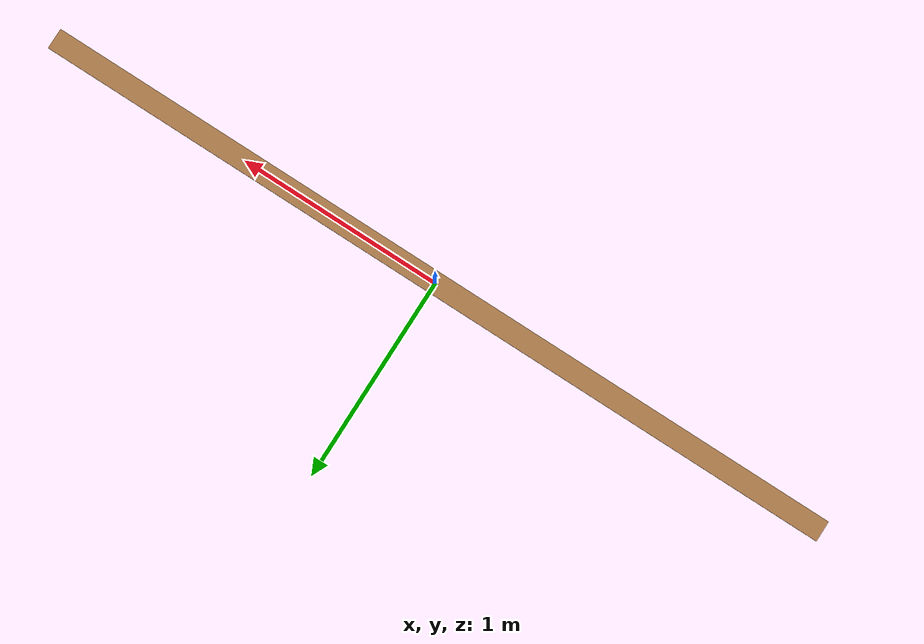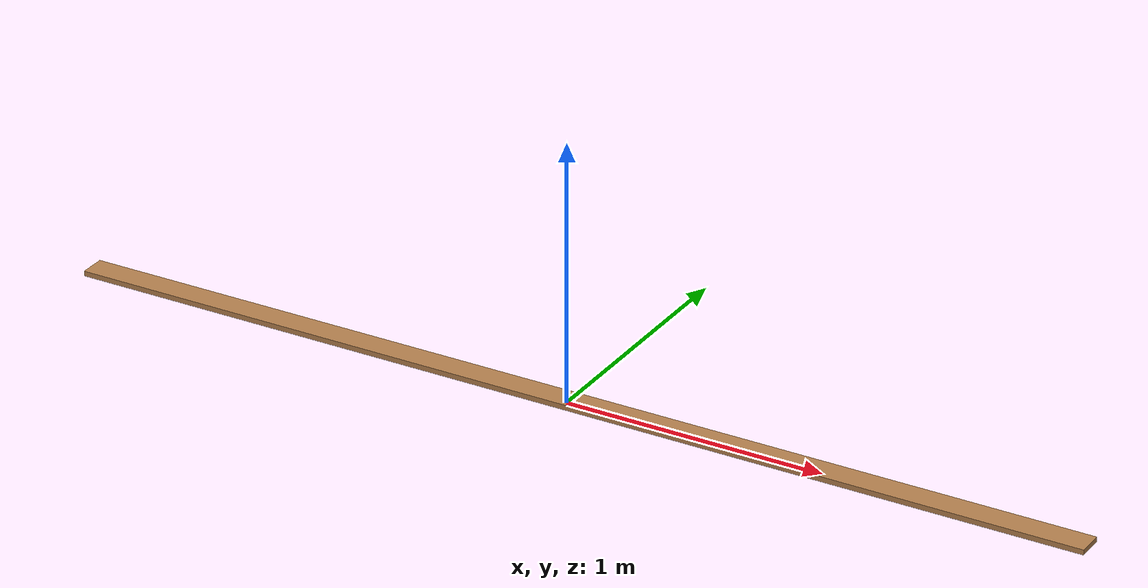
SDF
<?xml version='1.0'?>
<sdf version='1.4'>
  <model name="crossbeam">
  <static>true</static>
    <link name="beam">
      <pose>0 0 0.01 0 0 0</pose>

      <collision name="collision">
        <geometry>
          <box>
            <size>4 .1 .02</size>
          </box>
        </geometry>
      </collision>

      <visual name="visual">
        <geometry>
          <box>
            <size>4 .1 .02</size>
          </box>
        </geometry>
        <material>
	  <script>
	    <name>Gazebo/Wood</name>
	  </script>
        </material>
      </visual>

    <inertial>
      <pose>0 0 0.01 0 0 0</pose>
      <mass>0.5</mass>
      <inertia>
        <ixx>1.0</ixx>
        <ixy>0.0</ixy>
        <ixz>0.0</ixz>
        <iyy>1.0</iyy>
        <iyz>0.0</iyz>
        <izz>1</izz>
      </inertia>
    </inertial>

    </link>

  </model>
</sdf>
